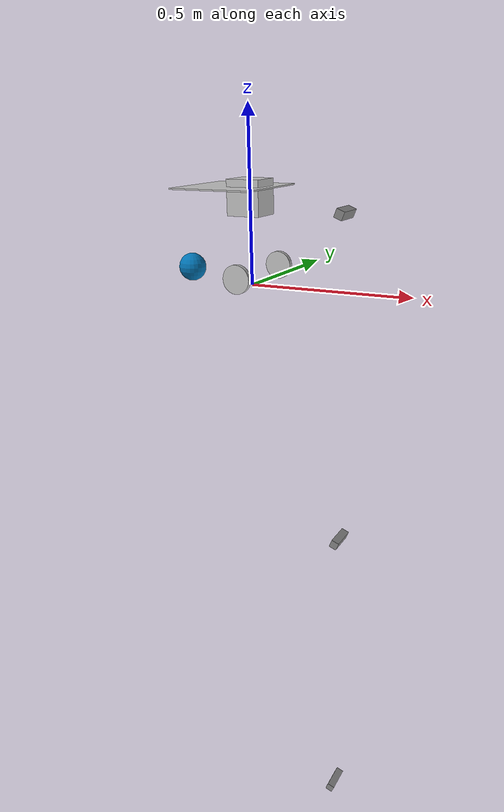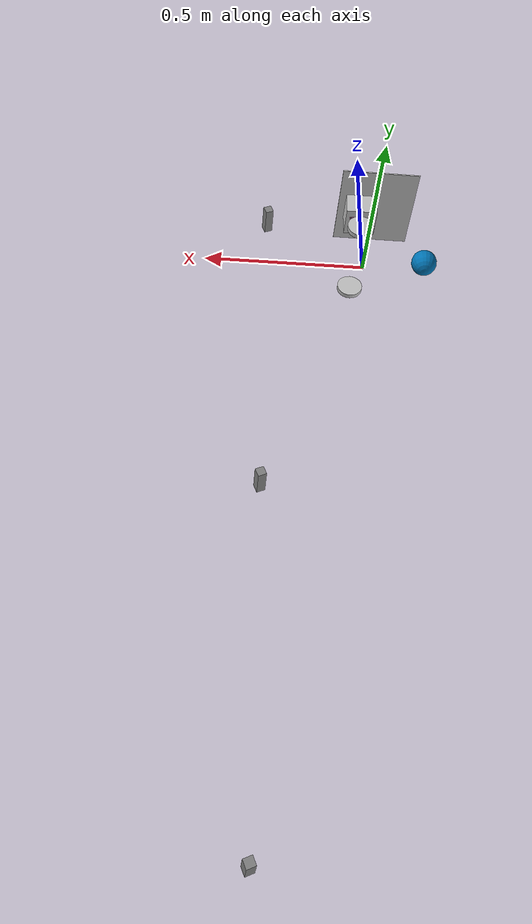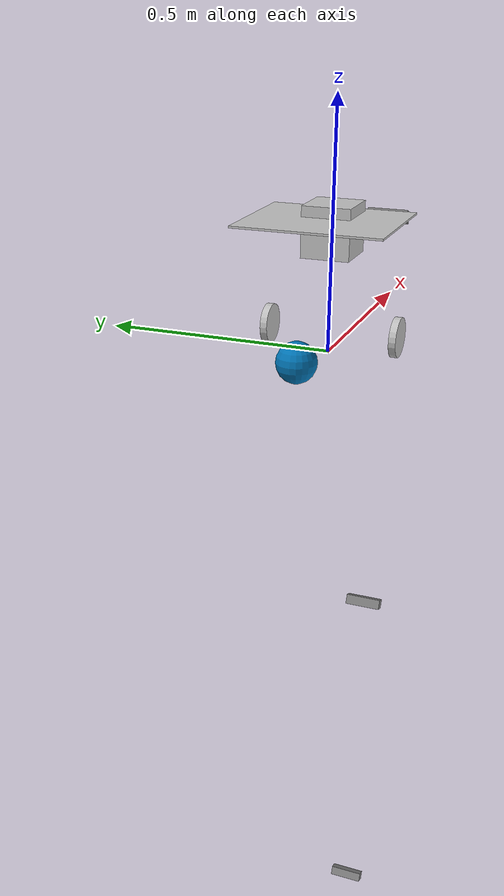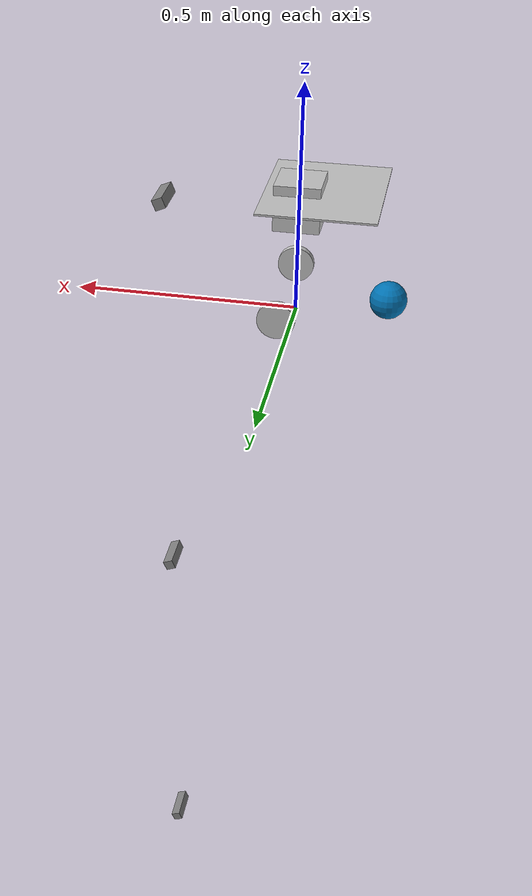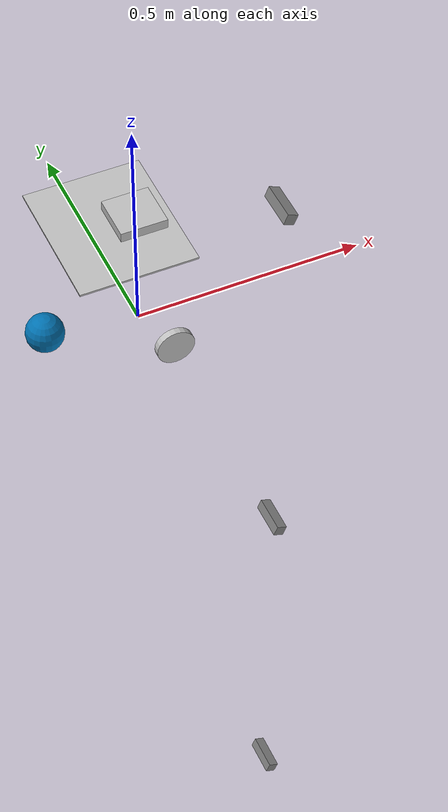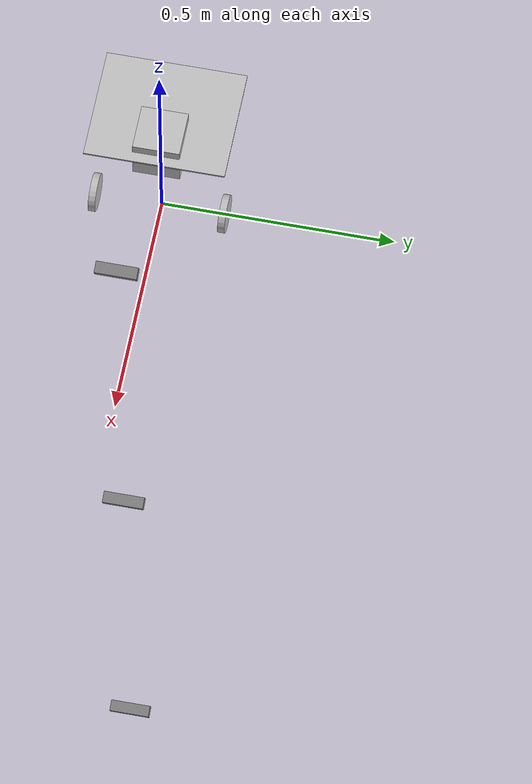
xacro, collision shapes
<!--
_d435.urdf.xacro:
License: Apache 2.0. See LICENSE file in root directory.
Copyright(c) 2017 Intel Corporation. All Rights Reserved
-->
<?xml version="1.0"?>
<robot name="beego" xmlns:xacro="http://ros.org/wiki/xacro">

  <xacro:property name="M_PI" value="3.1415926"/>
  <xacro:property name="PC_MASS" value="1.12"/>
  <xacro:property name="BAT_MASS" value="0.8"/>
  <xacro:property name="BASE_MASS" value="${3.0+PC_MASS+BAT_MASS}"/>
  <xacro:property name="BASE_X" value="0.3"/>
  <xacro:property name="BASE_Y" value="0.26"/>
  <xacro:property name="BASE_Z" value="0.26"/>
  <xacro:property name="WHEEL_MASS" value="0.1"/>
  <xacro:property name="WHEEL_RAD" value="0.041"/>
  <xacro:property name="WHEEL_THICK" value="0.015"/>

  <xacro:arg name="use_nominal_extrinsics" default="false" />
  <xacro:include filename="$(find sim)/urdf/_d435.urdf.xacro"/>

  <material name="gray">
    <color rgba="0.75 0.75 0.75 1"/>
  </material>

<!-- ロボットに追加のオブジェクトでカメラの重みで倒れないようにする -->
  <link name="extra_weight">
    <visual>
      <origin xyz="0 0 0.15" rpy="0 0 0"/> //位置を調整
      <geometry>
        <box size="0.1 0.1 0.1"/> //サイズを設定
      </geometry>
      <material name="gray"/>
    </visual>
    <collision>
      <origin xyz="0 0 0.1" rpy="0 0 0"/>
      <geometry>
        <box size="0.1 0.1 0.1"/>
      </geometry>
    </collision>
    <inertial>
      <origin xyz="0 0 0.15" rpy="0 0 0"/>
      <mass value="25.0"/> // 重量を設定
      <inertia ixx="0.1" ixy="0" ixz="0" iyy="0.1" iyz="0" izz="0.1"/>
    </inertial>
  </link>

  <joint name="extra_weight_joint" type="fixed">
    <parent link="base_link"/>
    <child link="extra_weight"/>
    <origin xyz="0 0 0.1" rpy="0 0 0"/> //位置を調整
  </joint>

  <!-- ===============  Body =============== -->
  <link name="base_link">
    <visual name="visual">
      <origin xyz="0 0 0" rpy="0 0 ${M_PI/2}"/>
      <geometry>
        <mesh filename="package://sim/meshes/base_link.STL" />
      </geometry>
      <material name="gray"/>
    </visual>
    <collision name="collision">
      <origin xyz="-0.05275 0 0.227" rpy="0 0 0"/>
      <geometry>
	<box size="0.25 0.3 0.004"/>
      </geometry>
    </collision>
    <inertial>
      <origin xyz="-0.05 0 0.1" rpy="0 0 0"/>
      <mass value="${BASE_MASS}"/>
      <inertia ixx="${(1/12)*BASE_MASS*(BASE_Y*BASE_Y+BASE_Z*BASE_Z)}"
	       ixy="0"
	       ixz="0"
	       iyy="${(1/12)*BASE_MASS*(BASE_Z*BASE_Z+BASE_X*BASE_X)}"
	       iyz="0"
	       izz="${(1/12)*BASE_MASS*(BASE_X*BASE_X+BASE_Y*BASE_Y)}"/>
    </inertial>
  </link>

  <link name="right_wheel_link">
    <visual>
      <origin xyz="0 0 0" rpy="0 0 0"/>
      <geometry>
        <mesh filename="package://sim/meshes/right_wheel_link.STL"/>
      </geometry>
      <material name="gray"/>
    </visual>
    <collision>
      <origin xyz="0 0 -0.0083" rpy="0 0 0" />
      <geometry>
	<cylinder length="${WHEEL_THICK}" radius="${WHEEL_RAD}"/>
      </geometry>
    </collision>
    <inertial>
      <origin xyz="0 0 -0.0083" rpy="0 0 0"/>
      <mass value="${WHEEL_MASS}"/>
      <inertia ixx="${WHEEL_MASS*WHEEL_RAD*WHEEL_RAD/4+WHEEL_MASS*WHEEL_THICK*WHEEL_THICK/12}"
	       ixy="0"
	       ixz="0"
	       iyy="${WHEEL_MASS*WHEEL_RAD*WHEEL_RAD/4+WHEEL_MASS*WHEEL_THICK*WHEEL_THICK/12}"
	       iyz="0"
	       izz="${WHEEL_MASS*WHEEL_RAD*WHEEL_RAD/2}"/>
    </inertial>
  </link>

  <joint name="right_wheel_joint" type="continuous">
    <origin xyz="0.02225 -0.1308 -0.01" rpy="${-M_PI/2} 0 0"/>
    <parent link="base_link"/>
    <child link="right_wheel_link"/>
    <axis xyz="0 0 1"/>
  </joint>

  <link name="left_wheel_link">
    <visual>
      <origin xyz="0 0 0" rpy="0 0 0" />
      <geometry>
        <mesh filename="package://sim/meshes/left_wheel_link.STL" />
      </geometry>
      <material name="gray"/>
    </visual>
    <collision>
      <origin xyz="0 0 -0.0083" rpy="0 0 0" />
      <geometry>
	<cylinder length="${WHEEL_THICK}" radius="${WHEEL_RAD}"/>
      </geometry>
    </collision>
    <inertial>
      <origin xyz="0 0 -0.0083" rpy="0 0 0"/>
      <mass value="${WHEEL_MASS}"/>
      <inertia ixx="${WHEEL_MASS*WHEEL_RAD*WHEEL_RAD/4+WHEEL_MASS*WHEEL_THICK*WHEEL_THICK/12}"
	       ixy="0"
	       ixz="0"
	       iyy="${WHEEL_MASS*WHEEL_RAD*WHEEL_RAD/4+WHEEL_MASS*WHEEL_THICK*WHEEL_THICK/12}"
	       iyz="0"
	       izz="${WHEEL_MASS*WHEEL_RAD*WHEEL_RAD/2}"/>
    </inertial>
  </link>

  <joint name="left_wheel_joint" type="continuous">
    <origin xyz="0.02225 0.1308 -0.01" rpy="${M_PI/2} 0 0"/>
    <parent link="base_link"/>
    <child link="left_wheel_link"/>
    <axis xyz="0 0 -1"/>
  </joint>

  <link name="caster_link">
    <collision>
      <origin xyz="0 0 0" rpy="0 0 0" />
      <geometry>
	<sphere radius="${WHEEL_RAD}"/>
      </geometry>
    </collision>
  </link>

  <joint name="caster_joint" type="fixed">
    <origin xyz="-0.203 0 -0.01" rpy="0 0 0"/>
    <parent link="base_link"/>
    <child link="caster_link"/>
  </joint>

  <link name="base_footprint"/>

  <joint name="base_footprint_joint" type="fixed">
    <origin xyz="0 0 0.05" rpy="0 0 0"/>
    <parent link="base_footprint"/>
    <child link="base_link"/>
  </joint>

  <link name="hokuyo_link">
    <visual>
      <origin xyz="0 0 0" rpy="0 0 0"/>
      <geometry>
        <mesh filename="package://rrbot_description/meshes/hokuyo.dae"/>
      </geometry>
    </visual>
    <collision>
      <origin xyz="0 0 0" rpy="0 0 0"/>
      <geometry>
        <box size="0.05 0.05 0.07"/>
      </geometry>
    </collision>
  </link>

  <joint name="hokuyo_joint" type="fixed">
    <origin xyz="0.012 0 0.185" rpy="0 0 0"/>
    <parent link="base_link"/>
    <child link="hokuyo_link"/>
    <axis xyz="0 1 0"/>
  </joint>

<!-- Camera -->

  <!-- ===============  Transmission =============== -->
  <transmission name="left_wheel_trans">
    <type>transmission_interface/SimpleTransmission</type>
    <joint name="left_wheel_joint">
      <hardwareInterface>hardware_interface/VelocityJointInterface</hardwareInterface>
    </joint>
    <actuator name="left_wheel_motor">
      <hardwareInterface>hardware_interface/VelocityJointInterface</hardwareInterface>
      <mechanicalReduction>30</mechanicalReduction>
    </actuator>
  </transmission>

  <transmission name="right_wheel_trans">
    <type>transmission_interface/SimpleTransmission</type>
    <joint name="right_wheel_joint">
      <hardwareInterface>hardware_interface/VelocityJointInterface</hardwareInterface>
    </joint>
    <actuator name="right_wheel_motor">
      <hardwareInterface>hardware_interface/VelocityJointInterface</hardwareInterface>
      <mechanicalReduction>30</mechanicalReduction>
    </actuator>
  </transmission>

  <!-- ===============  Sensor =============== -->
  <gazebo reference="hokuyo_link">
    <sensor type="ray" name="head_hokuyo_sensor">
      <pose>0 0 0 0 0 0</pose>
      <visualize>false</visualize>
      <update_rate>10</update_rate>
      <ray>
        <scan>
          <horizontal>
            <samples>726</samples>
            <resolution>1</resolution>
            <min_angle>-2.094395</min_angle>
            <max_angle>2.094395</max_angle>
          </horizontal>
        </scan>
        <range>
          <min>0.1</min>
          <max>5.6</max>
          <resolution>0.01</resolution>
        </range>
        <noise>
          <type>gaussian</type>
          <mean>0.0</mean>
          <stddev>0.01</stddev>
        </noise>
      </ray>
      <plugin name="gazebo_ros_head_hokuyo_controller" filename="libgazebo_ros_laser.so">
        <topicName>scan</topicName>
        <frameName>hokuyo_link</frameName>
      </plugin>
    </sensor>
  </gazebo>

  <!-- =============== Gazebo =============== -->
  <gazebo>
    <plugin name="gazebo_ros_control" filename="libgazebo_ros_control.so">
      <robotSimType>gazebo_ros_control/DefaultRobotHWSim</robotSimType>
      <legacyModeNS>true</legacyModeNS>
    </plugin>
  </gazebo>

  <!-- mu:摩擦係数を０にすることで全く動かなくなる⇛分布とる時 -->
  <!-- そのためpfのときは与える -->

  <gazebo reference="base_link">
    <selfCollide>true</selfCollide>
    <mu1 value="0.05"/>
    <mu2 value="0.05"/>
  </gazebo>

  <gazebo reference="left_wheel_link">
    <selfCollide>true</selfCollide>
    <mu1 value="1.0"/>
    <mu2 value="1.0"/>
  </gazebo>

  <gazebo reference="right_wheel_link">
    <selfCollide>true</selfCollide>
    <mu1 value="1.0"/>
    <mu2 value="1.0"/>
  </gazebo>

  <gazebo reference="caster_link">
    <selfCollide>true</selfCollide>
    <mu1 value="1.0"/>
    <mu2 value="1.0"/>
  </gazebo>

  <!-- 24deg / 0.418879rad:  -->
  <!-- 23deg / 0.401426rad -->
  <!-- 22.5deg /0.3926991 -->

  <xacro:sensor_d435 name="camera1" parent="base_footprint" topics_ns="camera1">
    <origin rpy="0 0.3926991 0" xyz="0.3 -${0.0175 + 0.015} 0.21"/>
  </xacro:sensor_d435>

  <xacro:sensor_d435 name="camera2" parent="base_footprint" topics_ns="camera2">
    <origin rpy="0 0.3926991 0" xyz="0.3 -${0.0175 + 0.015} -0.79"/>
  </xacro:sensor_d435>

  <xacro:sensor_d435 name="camera3" parent="base_footprint" topics_ns="camera3">
    <origin rpy="0 0.3926991 0" xyz="0.3 -${0.0175 + 0.015} -1.79"/>
  </xacro:sensor_d435>

</robot>

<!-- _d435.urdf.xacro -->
<robot name="sensor_d435" xmlns:xacro="http://ros.org/wiki/xacro">
  <!--File includes-->
  <xacro:include filename="$(find sim)/urdf/_d435.gazebo.xacro"/>

  <xacro:macro name="sensor_d435" params="name:=camera
    topics_ns:=camera
    parent *origin publish_pointcloud:=true">
    <xacro:property name="M_PI" value="3.1415926535897931" />

    <!-- The following values are approximate, and the camera node
     publishing TF values with actual calibrated camera extrinsic values -->
    <xacro:property name="d435_cam_depth_to_left_ir_offset" value="0.0"/>
    <xacro:property name="d435_cam_depth_to_right_ir_offset" value="-0.050"/>
    <xacro:property name="d435_cam_depth_to_color_offset" value="0.015"/>

    <!-- The following values model the aluminum peripherial case for the
    D435 camera, with the camera joint represented by the actual
    peripherial camera tripod mount -->
    <xacro:property name="d435_cam_width" value="0.090"/>
    <xacro:property name="d435_cam_height" value="0.025"/>
    <xacro:property name="d435_cam_depth" value="0.02505"/>
    <xacro:property name="d435_cam_mount_from_center_offset" value="0.0149"/>

    <!-- The following offset is relative the the physical D435 camera peripherial
    camera tripod mount -->
    <xacro:property name="d435_cam_depth_px" value="${d435_cam_mount_from_center_offset}"/>
    <xacro:property name="d435_cam_depth_py" value="0.0175"/>
    <xacro:property name="d435_cam_depth_pz" value="${d435_cam_height/2}"/>

    <material name="${name}_aluminum">
    <color rgba="0.5 0.5 0.5 1"/>
    </material>

    <!-- camera body, with origin at bottom screw mount -->
    <joint name="${name}_joint" type="fixed">
      <xacro:insert_block name="origin" />
      <parent link="${parent}"/>
      <child link="${name}_bottom_screw_frame" />
    </joint>
    <link name="${name}_bottom_screw_frame"/>

    <joint name="${name}_link_joint" type="fixed">
      <origin xyz="0 ${d435_cam_depth_py} ${d435_cam_depth_pz}" rpy="0 0 0"/>
      <parent link="${name}_bottom_screw_frame"/>
      <child link="${name}_link" />
    </joint>

    <link name="${name}_link">
      <visual>
      <origin xyz="${d435_cam_mount_from_center_offset} ${-d435_cam_depth_py} 0" rpy="${M_PI/2} 0 ${M_PI/2}"/>
        <geometry>
          <mesh filename="package://realsense2_description/meshes/d435.dae" />
        </geometry>
        <material name="${name}_aluminum"/>
      </visual>
      <collision>
        <origin xyz="0 ${-d435_cam_depth_py} 0" rpy="0 0 0"/>
        <geometry>
        <box size="${d435_cam_depth} ${d435_cam_width} ${d435_cam_height}"/>
        </geometry>
      </collision>
      <inertial>
        <!-- The following are not reliable values, and should not be used for modeling -->
        <mass value="0.564" />
        <origin xyz="0 0 0" />
        <inertia ixx="0.003881243" ixy="0.0" ixz="0.0" iyy="0.000498940" iyz="0.0" izz="0.003879257" />
      </inertial>
    </link>

    <!-- camera depth joints and links -->
    <joint name="${name}_depth_joint" type="fixed">
      <origin xyz="0 0 0" rpy="0 0 0"/>
      <parent link="${name}_link"/>
      <child link="${name}_depth_frame" />
    </joint>
    <link name="${name}_depth_frame"/>

    <joint name="${name}_depth_optical_joint" type="fixed">
      <origin xyz="0 0 0" rpy="${-M_PI/2} 0 ${-M_PI/2}" />
      <parent link="${name}_depth_frame" />
      <child link="${name}_depth_optical_frame" />
    </joint>
    <link name="${name}_depth_optical_frame"/>

    <!-- camera left IR joints and links -->
    <joint name="${name}_left_ir_joint" type="fixed">
      <origin xyz="0 ${d435_cam_depth_to_left_ir_offset} 0" rpy="0 0 0" />
      <parent link="${name}_depth_frame" />
      <child link="${name}_left_ir_frame" />
    </joint>
    <link name="${name}_left_ir_frame"/>

    <joint name="${name}_left_ir_optical_joint" type="fixed">
      <origin xyz="0 0 0" rpy="${-M_PI/2} 0 ${-M_PI/2}" />
      <parent link="${name}_left_ir_frame" />
      <child link="${name}_left_ir_optical_frame" />
    </joint>
    <link name="${name}_left_ir_optical_frame"/>

    <!-- camera right IR joints and links -->
    <joint name="${name}_right_ir_joint" type="fixed">
      <origin xyz="0 ${d435_cam_depth_to_right_ir_offset} 0" rpy="0 0 0" />
      <parent link="${name}_depth_frame" />
      <child link="${name}_right_ir_frame" />
    </joint>
    <link name="${name}_right_ir_frame"/>

    <joint name="${name}_right_ir_optical_joint" type="fixed">
      <origin xyz="0 0 0" rpy="${-M_PI/2} 0 ${-M_PI/2}" />
      <parent link="${name}_right_ir_frame" />
      <child link="${name}_right_ir_optical_frame" />
    </joint>
    <link name="${name}_right_ir_optical_frame"/>

    <!-- camera color joints and links -->
    <joint name="${name}_color_joint" type="fixed">
      <origin xyz="0 ${d435_cam_depth_to_color_offset} 0" rpy="0 0 0" />
      <parent link="${name}_depth_frame" />
      <child link="${name}_color_frame" />
    </joint>
    <link name="${name}_color_frame"/>

    <joint name="${name}_color_optical_joint" type="fixed">
      <origin xyz="0 0 0" rpy="${-M_PI/2} 0 ${-M_PI/2}" />
      <parent link="${name}_color_frame" />
      <child link="${name}_color_optical_frame" />
    </joint>
    <link name="${name}_color_optical_frame"/>

    <!-- Realsense Gazebo Plugin -->
    <xacro:gazebo_d435 camera_name="${name}" reference_link="${name}_link" topics_ns="${topics_ns}" depth_optical_frame="${name}_depth_optical_frame" color_optical_frame="${name}_color_optical_frame" infrared1_optical_frame="${name}_left_ir_optical_frame" infrared2_optical_frame="${name}_right_ir_optical_frame" publish_pointcloud="${publish_pointcloud}"/>

  </xacro:macro>
</robot>
